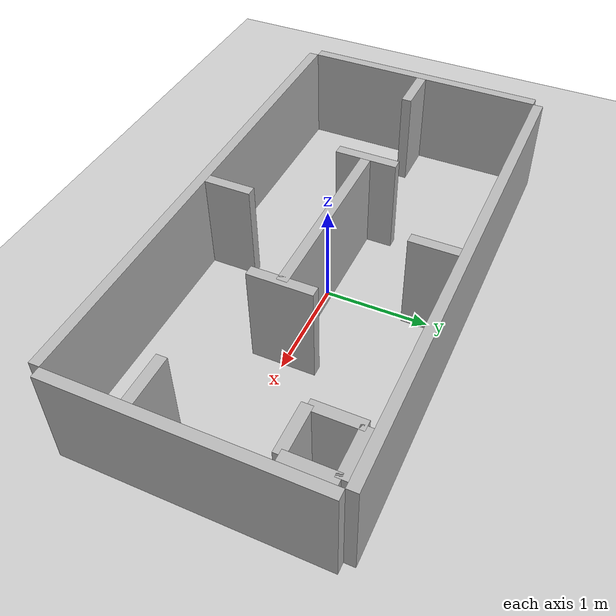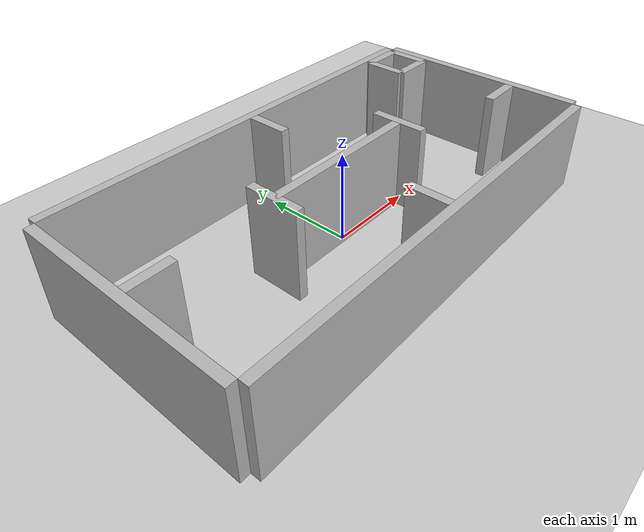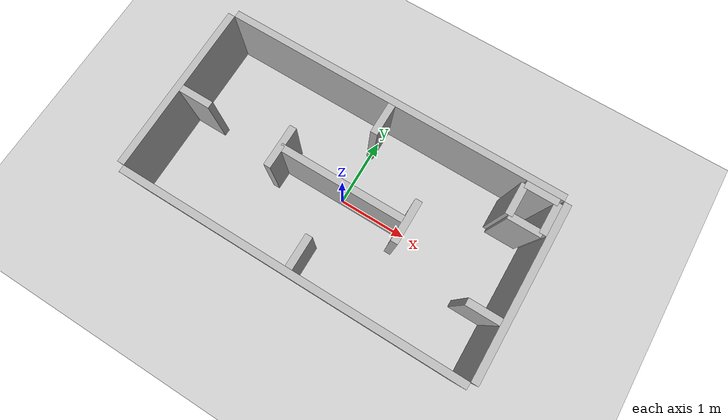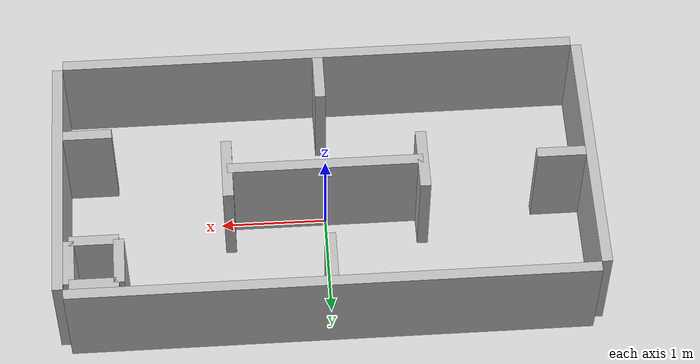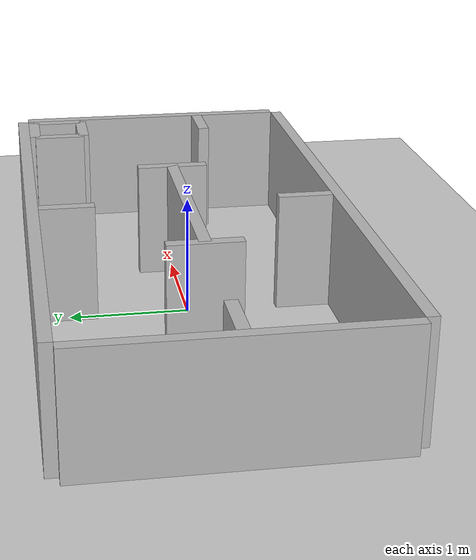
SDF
<?xml version="1.0" ?>
<sdf version="1.6">
  <world name="rect">
    <!-- Gazebo Sim requires these "systems" plugins for physics + sensors (e.g. lidar). -->
    <plugin
      filename="gz-sim-physics-system"
      name="gz::sim::systems::Physics">
    </plugin>
    <plugin
      filename="gz-sim-user-commands-system"
      name="gz::sim::systems::UserCommands">
    </plugin>
    <plugin
      filename="gz-sim-scene-broadcaster-system"
      name="gz::sim::systems::SceneBroadcaster">
    </plugin>
    <plugin
      filename="gz-sim-sensors-system"
      name="gz::sim::systems::Sensors">
      <render_engine>ogre2</render_engine>
    </plugin>
    <plugin
      filename="gz-sim-imu-system"
      name="gz::sim::systems::Imu">
    </plugin>

    <physics type="ode">
      <real_time_update_rate>1000.0</real_time_update_rate>
      <max_step_size>0.001</max_step_size>
      <real_time_factor>1</real_time_factor>
      <ode>
        <solver>
          <type>quick</type>
          <iters>150</iters>
          <precon_iters>0</precon_iters>
          <sor>1.400000</sor>
          <use_dynamic_moi_rescaling>1</use_dynamic_moi_rescaling>
        </solver>
        <constraints>
          <cfm>0.00001</cfm>
          <erp>0.2</erp>
          <contact_max_correcting_vel>2000.000000</contact_max_correcting_vel>
          <contact_surface_layer>0.01000</contact_surface_layer>
        </constraints>
      </ode>
    </physics>

    <!-- Self-contained lighting + ground (no model:// dependencies) -->
    <gravity>0 0 -9.8</gravity>

    <light name="sun" type="directional">
      <pose>0 0 10 0 0 0</pose>
      <diffuse>1 1 1 1</diffuse>
      <specular>0.1 0.1 0.1 1</specular>
      <attenuation>
        <range>1000</range>
        <constant>0.9</constant>
        <linear>0.01</linear>
        <quadratic>0.001</quadratic>
      </attenuation>
      <direction>-0.5 0.1 -1</direction>
      <cast_shadows>true</cast_shadows>
    </light>

    <model name="ground_plane">
      <static>true</static>
      <link name="ground_link">
        <collision name="collision">
          <geometry>
            <plane>
              <normal>0 0 1</normal>
              <size>200 200</size>
            </plane>
          </geometry>
        </collision>
        <visual name="visual">
          <geometry>
            <plane>
              <normal>0 0 1</normal>
              <size>200 200</size>
            </plane>
          </geometry>
          <material>
            <ambient>0.8 0.8 0.8 1</ambient>
            <diffuse>0.8 0.8 0.8 1</diffuse>
            <specular>0.1 0.1 0.1 1</specular>
          </material>
        </visual>
      </link>
    </model>

    <model name="maze_walls">
      <static>true</static>

      <!-- Outer boundary -->
      <link name="wall_north">
        <pose>0 1.2692 0.5 0 0 0</pose>
        <collision name="col"><geometry><box><size>4.8768 0.1 1.0</size></box></geometry></collision>
        <visual name="vis"><geometry><box><size>4.8768 0.1 1.0</size></box></geometry></visual>
      </link>
      <link name="wall_south">
        <pose>0 -1.2692 0.5 0 0 0</pose>
        <collision name="col"><geometry><box><size>4.8768 0.1 1.0</size></box></geometry></collision>
        <visual name="vis"><geometry><box><size>4.8768 0.1 1.0</size></box></geometry></visual>
      </link>
      <link name="wall_west">
        <pose>-2.4884 0 0.5 0 0 0</pose>
        <collision name="col"><geometry><box><size>0.1 2.4384 1.0</size></box></geometry></collision>
        <visual name="vis"><geometry><box><size>0.1 2.4384 1.0</size></box></geometry></visual>
      </link>
      <link name="wall_east">
        <pose>2.4884 0 0.5 0 0 0</pose>
        <collision name="col"><geometry><box><size>0.1 2.4384 1.0</size></box></geometry></collision>
        <visual name="vis"><geometry><box><size>0.1 2.4384 1.0</size></box></geometry></visual>
      </link>

      <!-- Center wall (east-west), centered in the rectangle -->
      <link name="wall_middle">
        <pose>0 0 0.5 0 0 0</pose>
        <collision name="col"><geometry><box><size>1.8288 0.1 1.0</size></box></geometry></collision>
        <visual name="vis"><geometry><box><size>1.8288 0.1 1.0</size></box></geometry></visual>
      </link>

      <!-- 2-ft perpendicular stubs at the ends of the middle wall -->
      <link name="wall_middle_stub_west">
        <pose>-0.9144 0 0.5 0 0 0</pose>
        <collision name="col"><geometry><box><size>0.1 0.6096 1.0</size></box></geometry></collision>
        <visual name="vis"><geometry><box><size>0.1 0.6096 1.0</size></box></geometry></visual>
      </link>
      <link name="wall_middle_stub_east">
        <pose>0.9144 0 0.5 0 0 0</pose>
        <collision name="col"><geometry><box><size>0.1 0.6096 1.0</size></box></geometry></collision>
        <visual name="vis"><geometry><box><size>0.1 0.6096 1.0</size></box></geometry></visual>
      </link>

      <!-- 1.5-ft juts from the middle of each outer side (except east side) -->
      <link name="jut_from_north">
        <pose>0 0.9906 0.5 0 0 0</pose>
        <collision name="col"><geometry><box><size>0.1 0.4572 1.0</size></box></geometry></collision>
        <visual name="vis"><geometry><box><size>0.1 0.4572 1.0</size></box></geometry></visual>
      </link>
      <link name="jut_from_south">
        <pose>0 -0.9906 0.5 0 0 0</pose>
        <collision name="col"><geometry><box><size>0.1 0.4572 1.0</size></box></geometry></collision>
        <visual name="vis"><geometry><box><size>0.1 0.4572 1.0</size></box></geometry></visual>
      </link>
      <link name="jut_from_west">
        <pose>-2.2098 0 0.5 0 0 0</pose>
        <collision name="col"><geometry><box><size>0.4572 0.1 1.0</size></box></geometry></collision>
        <visual name="vis"><geometry><box><size>0.4572 0.1 1.0</size></box></geometry></visual>
      </link>

      <!-- East side: 1.5-ft jut located 2.5 ft above south side -->
      <link name="jut_from_east_offset">
        <pose>2.2098 -0.4572 0.5 0 0 0</pose>
        <collision name="col"><geometry><box><size>0.4572 0.1 1.0</size></box></geometry></collision>
        <visual name="vis"><geometry><box><size>0.4572 0.1 1.0</size></box></geometry></visual>
      </link>

      <!-- NE corner: 1.5-ft x 1.5-ft square of walls -->
      <link name="ne_square_north">
        <pose>2.1598 1.1692 0.5 0 0 0</pose>
        <collision name="col"><geometry><box><size>0.4572 0.1 1.0</size></box></geometry></collision>
        <visual name="vis"><geometry><box><size>0.4572 0.1 1.0</size></box></geometry></visual>
      </link>
      <link name="ne_square_south">
        <pose>2.1598 0.7120 0.5 0 0 0</pose>
        <collision name="col"><geometry><box><size>0.4572 0.1 1.0</size></box></geometry></collision>
        <visual name="vis"><geometry><box><size>0.4572 0.1 1.0</size></box></geometry></visual>
      </link>
      <link name="ne_square_east">
        <pose>2.3884 0.9406 0.5 0 0 0</pose>
        <collision name="col"><geometry><box><size>0.1 0.4572 1.0</size></box></geometry></collision>
        <visual name="vis"><geometry><box><size>0.1 0.4572 1.0</size></box></geometry></visual>
      </link>
      <link name="ne_square_west">
        <pose>1.9312 0.9406 0.5 0 0 0</pose>
        <collision name="col"><geometry><box><size>0.1 0.4572 1.0</size></box></geometry></collision>
        <visual name="vis"><geometry><box><size>0.1 0.4572 1.0</size></box></geometry></visual>
      </link>
    </model>
  </world>
</sdf>
